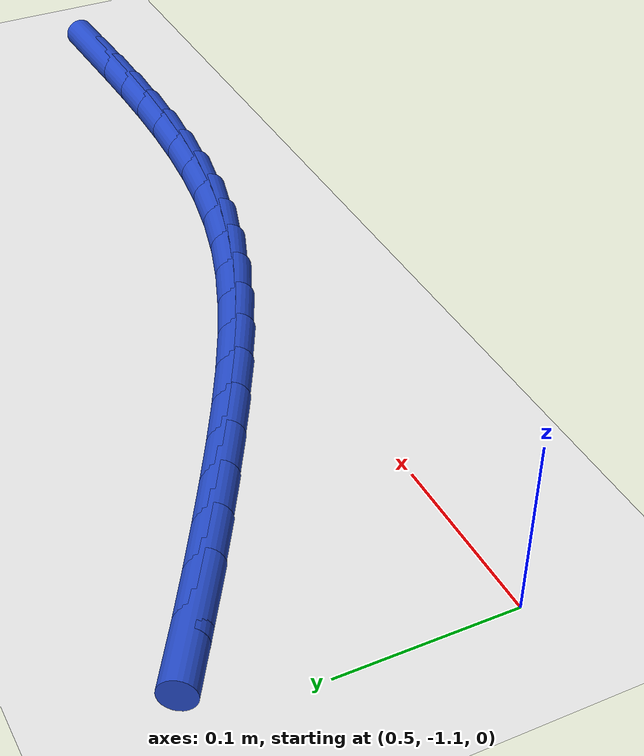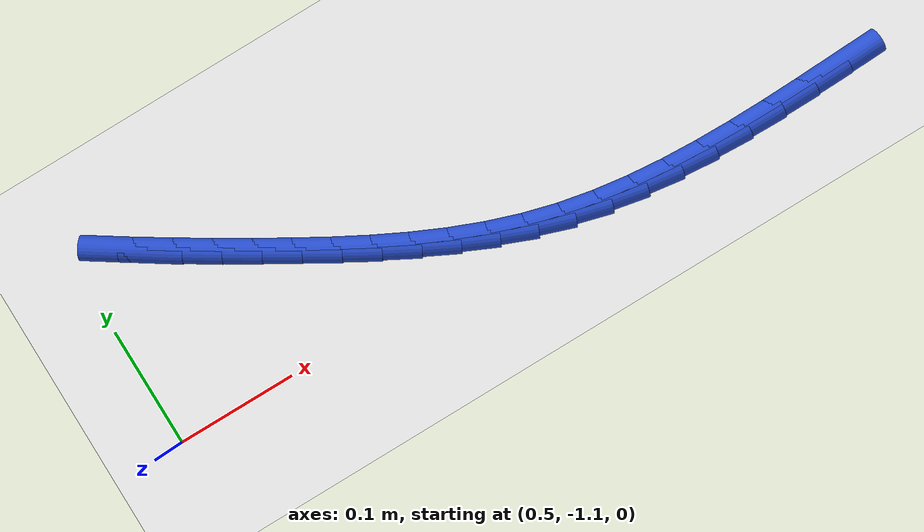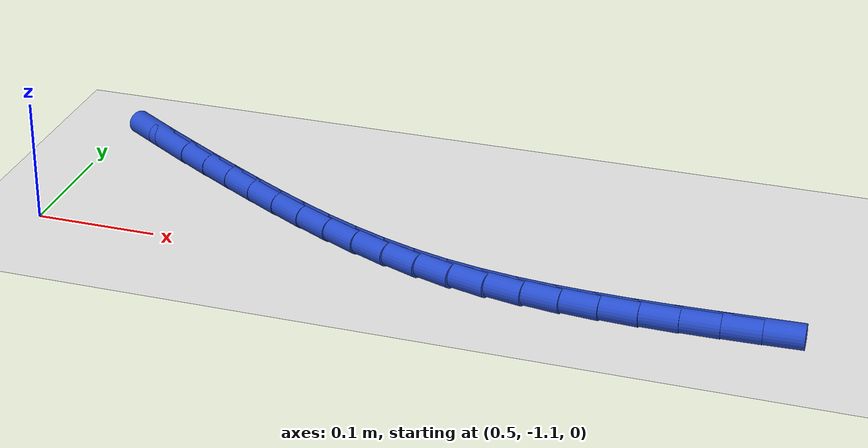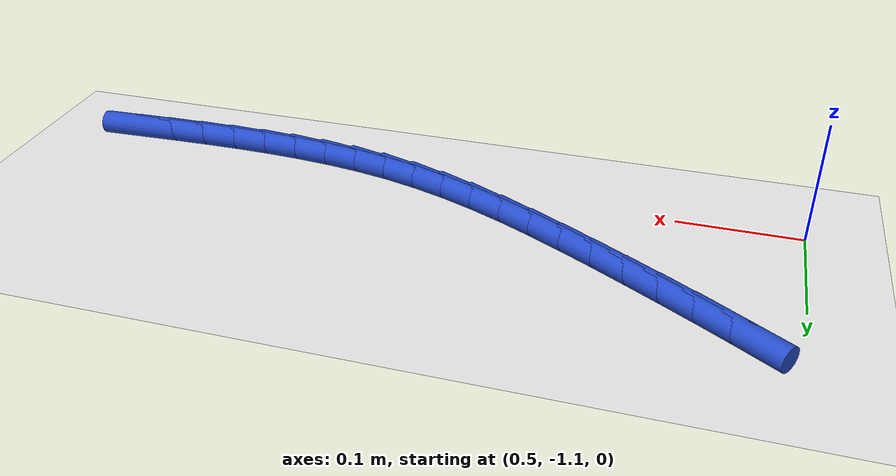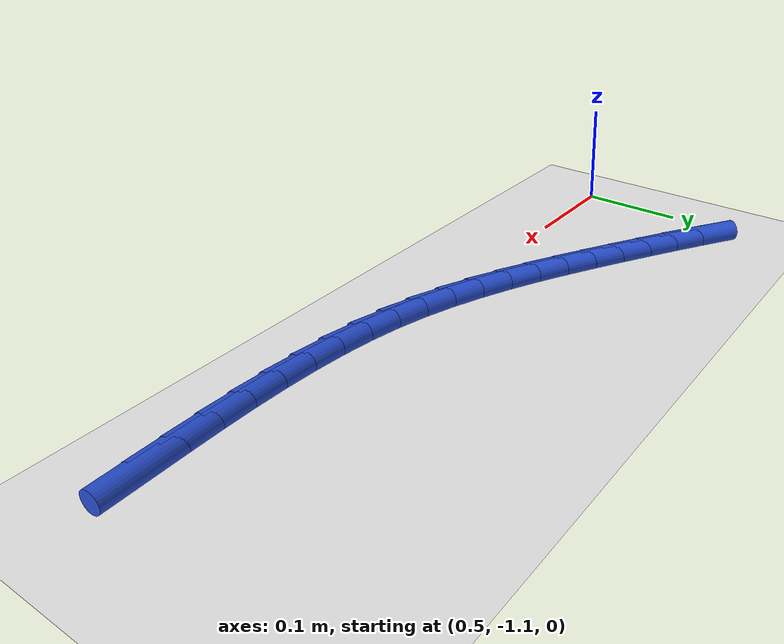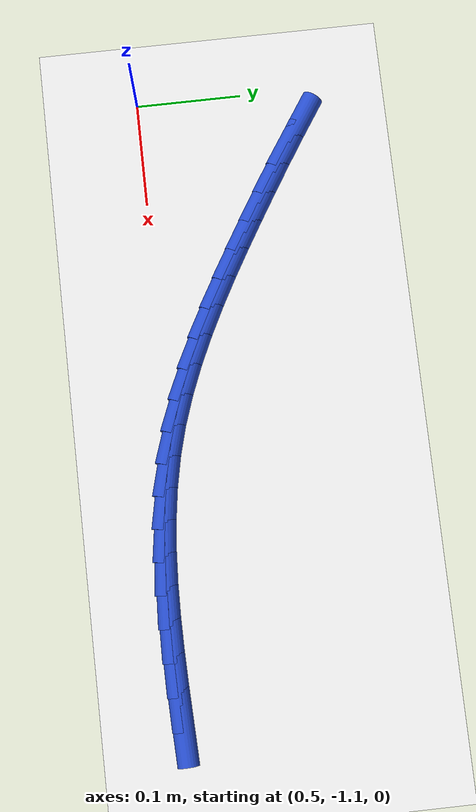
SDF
<sdf version="1.6">
 <world name="default">
  <model name="ground_plane">
   <static>1</static>
   <link name="link">
    <collision name="collision">
     <geometry><plane><normal>0 0 1</normal><size>100 100</size></plane></geometry>
     <surface><friction><ode><mu>100</mu><mu2>50</mu2></ode></friction></surface>
    </collision>
    <visual name="visual">
     <cast_shadows>0</cast_shadows>
     <geometry><plane><normal>0 0 1</normal><size>100 100</size></plane></geometry>
     <material>
      <script><uri>file://media/materials/scripts/gazebo.material</uri><name>Gazebo/WhiteGlow</name></script>
     </material>
    </visual>
   </link>
  </model>
  <model name="line">
   <link name="link_183">
    <pose>1.081949731908464 -1.1153232580782921 0.01 0 1.57 0.03644992429280164</pose>
    <collision name="collision">
     <geometry><cylinder><radius>0.01</radius><length>0.08</length></cylinder></geometry>
    </collision>
    <visual name="visual">
     <material>
      <script><name>Gazebo/Blue</name><uri>file://media/materials/scripts/gazebo.material</uri></script>
     </material>
     <geometry><cylinder><radius>0.01</radius><length>0.08</length></cylinder></geometry>
    </visual>
   </link>
   <link name="link_184">
    <pose>1.0513728032579082 -1.1164382786607812 0.01 0 1.57 0.025080557048913633</pose>
    <collision name="collision">
     <geometry><cylinder><radius>0.01</radius><length>0.08</length></cylinder></geometry>
    </collision>
    <visual name="visual">
     <material>
      <script><name>Gazebo/Blue</name><uri>file://media/materials/scripts/gazebo.material</uri></script>
     </material>
     <geometry><cylinder><radius>0.01</radius><length>0.08</length></cylinder></geometry>
    </visual>
   </link>
   <link name="link_185">
    <pose>1.0208887818050227 -1.1172029952509674 0.01 0 1.57 0.006459215760876931</pose>
    <collision name="collision">
     <geometry><cylinder><radius>0.01</radius><length>0.08</length></cylinder></geometry>
    </collision>
    <visual name="visual">
     <material>
      <script><name>Gazebo/Blue</name><uri>file://media/materials/scripts/gazebo.material</uri></script>
     </material>
     <geometry><cylinder><radius>0.01</radius><length>0.08</length></cylinder></geometry>
    </visual>
   </link>
   <link name="link_186">
    <pose>0.9905461487916744 -1.1173989875900574 0.01 0 1.57 -0.019602729019022068</pose>
    <collision name="collision">
     <geometry><cylinder><radius>0.01</radius><length>0.08</length></cylinder></geometry>
    </collision>
    <visual name="visual">
     <material>
      <script><name>Gazebo/Blue</name><uri>file://media/materials/scripts/gazebo.material</uri></script>
     </material>
     <geometry><cylinder><radius>0.01</radius><length>0.08</length></cylinder></geometry>
    </visual>
   </link>
   <link name="link_187">
    <pose>0.9603933854597259 -1.1168078354192592 0.01 0 1.57 -0.05332557253827761</pose>
    <collision name="collision">
     <geometry><cylinder><radius>0.01</radius><length>0.08</length></cylinder></geometry>
    </collision>
    <visual name="visual">
     <material>
      <script><name>Gazebo/Blue</name><uri>file://media/materials/scripts/gazebo.material</uri></script>
     </material>
     <geometry><cylinder><radius>0.01</radius><length>0.08</length></cylinder></geometry>
    </visual>
   </link>
   <link name="link_188">
    <pose>0.9304789730510417 -1.1152111184797802 0.01 0 1.57 -0.09491918243153807</pose>
    <collision name="collision">
     <geometry><cylinder><radius>0.01</radius><length>0.08</length></cylinder></geometry>
    </collision>
    <visual name="visual">
     <material>
      <script><name>Gazebo/Blue</name><uri>file://media/materials/scripts/gazebo.material</uri></script>
     </material>
     <geometry><cylinder><radius>0.01</radius><length>0.08</length></cylinder></geometry>
    </visual>
   </link>
   <link name="link_189">
    <pose>0.900851392807486 -1.1123904165128276 0.01 0 1.57 -0.14452227730840075</pose>
    <collision name="collision">
     <geometry><cylinder><radius>0.01</radius><length>0.08</length></cylinder></geometry>
    </collision>
    <visual name="visual">
     <material>
      <script><name>Gazebo/Blue</name><uri>file://media/materials/scripts/gazebo.material</uri></script>
     </material>
     <geometry><cylinder><radius>0.01</radius><length>0.08</length></cylinder></geometry>
    </visual>
   </link>
   <link name="link_190">
    <pose>0.8715591259709232 -1.108127309259609 0.01 0 1.57 -0.2021221101618264</pose>
    <collision name="collision">
     <geometry><cylinder><radius>0.01</radius><length>0.08</length></cylinder></geometry>
    </collision>
    <visual name="visual">
     <material>
      <script><name>Gazebo/Blue</name><uri>file://media/materials/scripts/gazebo.material</uri></script>
     </material>
     <geometry><cylinder><radius>0.01</radius><length>0.08</length></cylinder></geometry>
    </visual>
   </link>
   <link name="link_191">
    <pose>0.8426506537832172 -1.1022033764613315 0.01 0 1.57 -0.2669498548962969</pose>
    <collision name="collision">
     <geometry><cylinder><radius>0.01</radius><length>0.08</length></cylinder></geometry>
    </collision>
    <visual name="visual">
     <material>
      <script><name>Gazebo/Blue</name><uri>file://media/materials/scripts/gazebo.material</uri></script>
     </material>
     <geometry><cylinder><radius>0.01</radius><length>0.08</length></cylinder></geometry>
    </visual>
   </link>
   <link name="link_192">
    <pose>0.8141715614464162 -1.0944149961890728 0.01 0 1.57 -0.3302984918633853</pose>
    <collision name="collision">
     <geometry><cylinder><radius>0.01</radius><length>0.08</length></cylinder></geometry>
    </collision>
    <visual name="visual">
     <material>
      <script><name>Gazebo/Blue</name><uri>file://media/materials/scripts/gazebo.material</uri></script>
     </material>
     <geometry><cylinder><radius>0.01</radius><length>0.08</length></cylinder></geometry>
    </visual>
   </link>
   <link name="link_193">
    <pose>0.7861206685941167 -1.084797511567036 0.01 0 1.57 -0.3852716861028397</pose>
    <collision name="collision">
     <geometry><cylinder><radius>0.01</radius><length>0.08</length></cylinder></geometry>
    </collision>
    <visual name="visual">
     <material>
      <script><name>Gazebo/Blue</name><uri>file://media/materials/scripts/gazebo.material</uri></script>
     </material>
     <geometry><cylinder><radius>0.01</radius><length>0.08</length></cylinder></geometry>
    </visual>
   </link>
   <link name="link_194">
    <pose>0.7584589542852685 -1.0735796253904326 0.01 0 1.57 -0.43174960766707643</pose>
    <collision name="collision">
     <geometry><cylinder><radius>0.01</radius><length>0.08</length></cylinder></geometry>
    </collision>
    <visual name="visual">
     <material>
      <script><name>Gazebo/Blue</name><uri>file://media/materials/scripts/gazebo.material</uri></script>
     </material>
     <geometry><cylinder><radius>0.01</radius><length>0.08</length></cylinder></geometry>
    </visual>
   </link>
   <link name="link_195">
    <pose>0.7311463116683349 -1.0609955892944882 0.01 0 1.57 -0.46997017954249487</pose>
    <collision name="collision">
     <geometry><cylinder><radius>0.01</radius><length>0.08</length></cylinder></geometry>
    </collision>
    <visual name="visual">
     <material>
      <script><name>Gazebo/Blue</name><uri>file://media/materials/scripts/gazebo.material</uri></script>
     </material>
     <geometry><cylinder><radius>0.01</radius><length>0.08</length></cylinder></geometry>
    </visual>
   </link>
   <link name="link_196">
    <pose>0.7041426338917774 -1.0472796549144279 0.01 0 1.57 -0.5002385607548888</pose>
    <collision name="collision">
     <geometry><cylinder><radius>0.01</radius><length>0.08</length></cylinder></geometry>
    </collision>
    <visual name="visual">
     <material>
      <script><name>Gazebo/Blue</name><uri>file://media/materials/scripts/gazebo.material</uri></script>
     </material>
     <geometry><cylinder><radius>0.01</radius><length>0.08</length></cylinder></geometry>
    </visual>
   </link>
   <link name="link_197">
    <pose>0.6774078141040586 -1.032666073885477 0.01 0 1.57 -0.5228540083428812</pose>
    <collision name="collision">
     <geometry><cylinder><radius>0.01</radius><length>0.08</length></cylinder></geometry>
    </collision>
    <visual name="visual">
     <material>
      <script><name>Gazebo/Blue</name><uri>file://media/materials/scripts/gazebo.material</uri></script>
     </material>
     <geometry><cylinder><radius>0.01</radius><length>0.08</length></cylinder></geometry>
    </visual>
   </link>
   <link name="link_198">
    <pose>0.6509017454536408 -1.0173890978428606 0.01 0 1.57 -0.5380598904484233</pose>
    <collision name="collision">
     <geometry><cylinder><radius>0.01</radius><length>0.08</length></cylinder></geometry>
    </collision>
    <visual name="visual">
     <material>
      <script><name>Gazebo/Blue</name><uri>file://media/materials/scripts/gazebo.material</uri></script>
     </material>
     <geometry><cylinder><radius>0.01</radius><length>0.08</length></cylinder></geometry>
    </visual>
   </link>
   <link name="link_199">
    <pose>0.6245843210889862 -1.0016829784218044 0.01 0 1.57 -0.5474591933871575</pose>
    <collision name="collision">
     <geometry><cylinder><radius>0.01</radius><length>0.08</length></cylinder></geometry>
    </collision>
    <visual name="visual">
     <material>
      <script><name>Gazebo/Blue</name><uri>file://media/materials/scripts/gazebo.material</uri></script>
     </material>
     <geometry><cylinder><radius>0.01</radius><length>0.08</length></cylinder></geometry>
    </visual>
   </link>
   <link name="link_200">
    <pose>0.5984291747169389 -0.9857384153419649 0.01 0 1.57 -0.557210894296753</pose>
    <collision name="collision">
     <geometry><cylinder><radius>0.01</radius><length>0.08</length></cylinder></geometry>
    </collision>
    <visual name="visual">
     <material>
      <script><name>Gazebo/Blue</name><uri>file://media/materials/scripts/gazebo.material</uri></script>
     </material>
     <geometry><cylinder><radius>0.01</radius><length>0.08</length></cylinder></geometry>
    </visual>
   </link>
   <link name="link_201">
    <pose>0.5724678205226889 -0.9695626510255726 0.01 0 1.57 -0.5689463536758671</pose>
    <collision name="collision">
     <geometry><cylinder><radius>0.01</radius><length>0.08</length></cylinder></geometry>
    </collision>
    <visual name="visual">
     <material>
      <script><name>Gazebo/Blue</name><uri>file://media/materials/scripts/gazebo.material</uri></script>
     </material>
     <geometry><cylinder><radius>0.01</radius><length>0.08</length></cylinder></geometry>
    </visual>
   </link>
   <link name="link_202">
    <pose>0.5467470106956027 -0.9531146296923394 0.01 0 1.57 -0.5826939094379479</pose>
    <collision name="collision">
     <geometry><cylinder><radius>0.01</radius><length>0.08</length></cylinder></geometry>
    </collision>
    <visual name="visual">
     <material>
      <script><name>Gazebo/Blue</name><uri>file://media/materials/scripts/gazebo.material</uri></script>
     </material>
     <geometry><cylinder><radius>0.01</radius><length>0.08</length></cylinder></geometry>
    </visual>
   </link>
  </model>
 </world>
</sdf>
